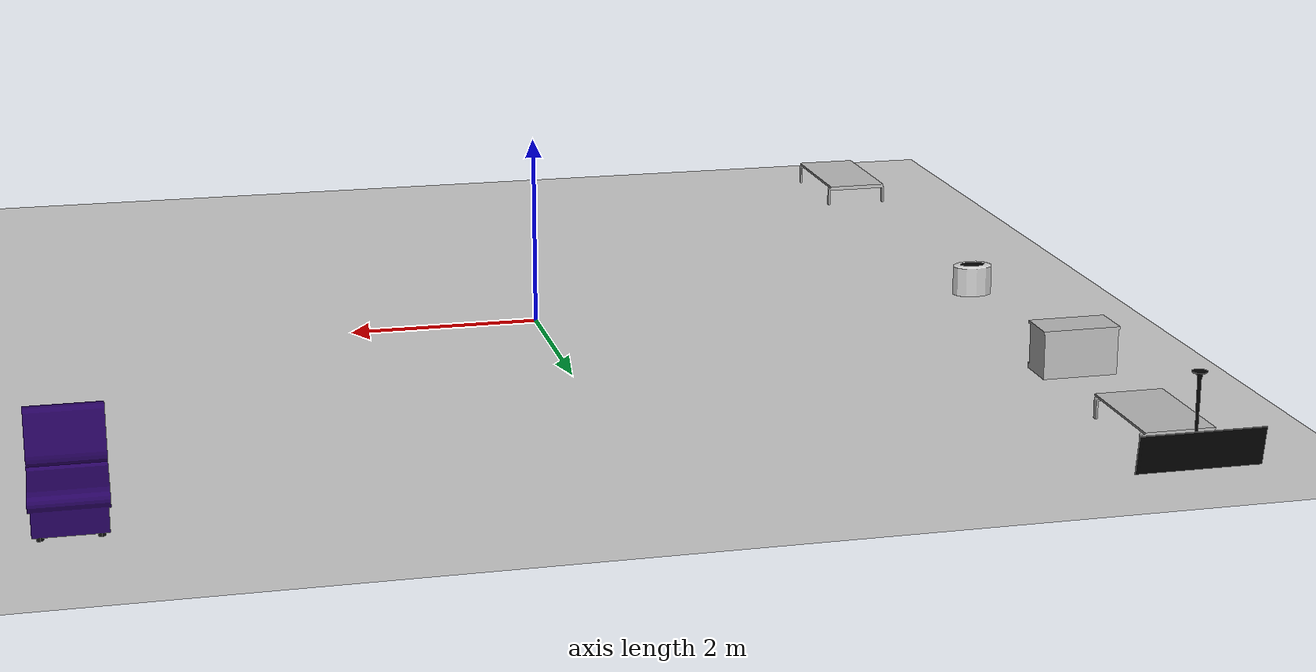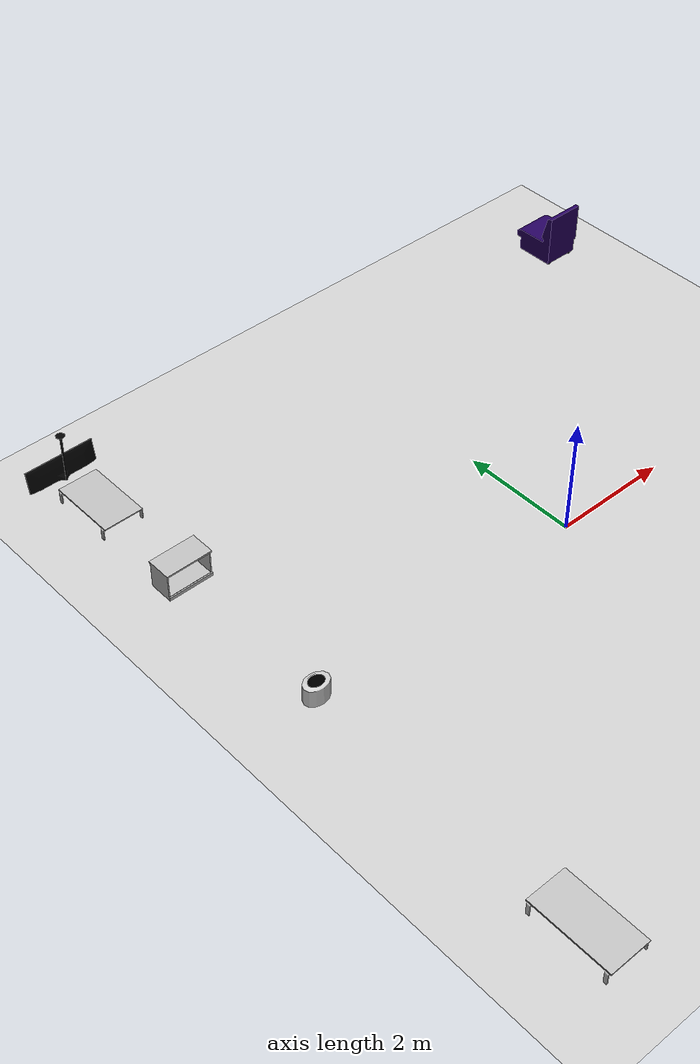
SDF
<?xml version="1.0" ?>
<sdf version="1.4">

  <world name="default">
    <include>
      <uri>model://ground_plane</uri>
    </include>

    <include>
      <uri>model://sun</uri>
    </include>

    <include>
      <uri>model://robert_gazebo/models/table_rectangular_high</uri>
      <name>table_rectangular_high</name>
      <pose>-5 -5 0 0 0 0</pose>
    </include>

    <include>
      <uri>model://robert_gazebo/models/table_rectangular_low</uri>
      <name>table_rectangular_low</name>
      <pose>-5 5 0 0 0 0</pose>
    </include>

    <include>
      <uri>model://robert_gazebo/models/locker_008</uri>
      <name>locker_008</name>
      <pose>-5 3 0 0 0 0</pose>
    </include>

    <include>
      <uri>model://robert_gazebo/models/dump</uri>
      <name>dump</name>
      <pose>-5 0 0 0 0 0</pose>
    </include>

    <include>
      <uri>model://robert_gazebo/models/screen</uri>
      <name>screen</name>
      <pose>-5 6 0 0 0 0</pose>
    </include>

    <include>
      <uri>model://robert_gazebo/models/soft_armchair</uri>
      <name>soft_armchair</name>
      <pose>5 5 0 0 0 0</pose>
    </include>

    <gui fullscreen='0'>
      <camera name='user_camera'>
        <pose>4.927360 -4.376610 3.740080 0.000000 0.275643 2.356190</pose>
        <view_controller>orbit</view_controller>
      </camera>
    </gui>

  </world>
</sdf>

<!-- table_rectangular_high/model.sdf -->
<sdf version='1.5'>
  <model name="table_rectangular_high">
    <pose>0 0 0 0 0 0</pose>
    <static>false</static>
    <link name='model_body'>
      <visual name="visual">
        <geometry>
          <mesh>
            <uri>model://robert_gazebo/meshes/table_rectangular_high_visual.dae</uri>
            <scale>1 1 1</scale>
          </mesh>
         </geometry>
      </visual>

      <collision name="collision">
        <geometry>
          <mesh>
            <uri>model://robert_gazebo/meshes/table_rectangular_high_collision.dae</uri>
            <scale>1 1 1</scale>
          </mesh>
        </geometry>
      </collision>

      <inertial>
        <pose> 0 0 0 0 0 0</pose>
        <inertia>
          <ixx>2.42</ixx>
          <ixy>0</ixy>
          <ixz>0</ixz>
          <iyy>0.87</iyy>
          <iyz>0</iyz>
          <izz>2.27</izz>
        </inertia>
        <mass>12.0</mass>
      </inertial>
    </link>
  </model>
</sdf>

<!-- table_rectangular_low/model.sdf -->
<sdf version='1.5'>
  <model name="table_rectangular_low">
    <pose>0 0 0 0 0 0</pose>
    <static>false</static>
    <link name='model_body'>
      <visual name="visual">
        <geometry>
          <mesh>
            <uri>model://robert_gazebo/meshes/table_rectangular_low_visual.dae</uri>
            <scale>1 1 1</scale>
          </mesh>
         </geometry>
      </visual>

      <collision name="collision">
        <geometry>
          <mesh>
            <uri>model://robert_gazebo/meshes/table_rectangular_low_collision.dae</uri>
            <scale>1 1 1</scale>
          </mesh>
        </geometry>
      </collision>

      <inertial>
        <pose> 0 0 0 0 0 0</pose>
        <inertia>
          <ixx>1.45</ixx>
          <ixy>0</ixy>
          <ixz>0</ixz>
          <iyy>0.55</iyy>
          <iyz>0</iyz>
          <izz>1.5</izz>
        </inertia>
        <mass>10.0</mass>
      </inertial>
    </link>
  </model>
</sdf>

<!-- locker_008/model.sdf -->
<sdf version='1.5'>
  <model name="locker_008">
    <pose>0 0 0 0 0 0</pose>
    <static>false</static>
    <link name='model_body'>
      <visual name="visual">
        <geometry>
          <mesh>
            <uri>model://robert_gazebo/meshes/locker_008_visual.dae</uri>
            <scale>1 1 1</scale>
          </mesh>
         </geometry>
      </visual>

      <collision name="collision">
        <geometry>
          <mesh>
            <uri>model://robert_gazebo/meshes/locker_008_collision.dae</uri>
            <scale>1 1 1</scale>
          </mesh>
        </geometry>
      </collision>

      <inertial>
        <pose> 0 0 0 0 0 0</pose>
        <inertia>
          <ixx>0.69</ixx>
          <ixy>0</ixy>
          <ixz>0</ixz>
          <iyy>1.19</iyy>
          <iyz>0</iyz>
          <izz>0.78</izz>
        </inertia>
        <mass>10.0</mass>
      </inertial>
    </link>
  </model>
</sdf>

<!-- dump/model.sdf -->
<sdf version='1.5'>
    <model name="dump">
        <pose>0 0 0 0 0 0</pose>
        <static>false</static>
        <link name='model_body'>
            <visual name="visual">
                <geometry>
                    <mesh>
                        <uri>model://robert_gazebo/meshes/dump_visual.dae</uri>
                        <scale>1 1 1</scale>
                    </mesh>
                </geometry>
            </visual>

            <collision name="collision">
                <geometry>
                    <mesh>
                        <uri>model://robert_gazebo/meshes/dump_collision.dae</uri>
                        <scale>1 1 1</scale>
                    </mesh>
                </geometry>
            </collision>

            <inertial>
                <pose> 0 0 0 0 0 0</pose>
                <inertia>
                    <ixx>0.12</ixx>
                    <ixy>0</ixy>
                    <ixz>0</ixz>
                    <iyy>0.14</iyy>
                    <iyz>0</iyz>
                    <izz>0.06</izz>
                </inertia>
                <mass>3.0</mass>
            </inertial>
        </link>
    </model>
</sdf>

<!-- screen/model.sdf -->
<sdf version='1.5'>
    <model name="LG_screen">
        <pose>0 0 0 0 0 0</pose>
        <static>true</static>
        <link name='model_body'>
            <visual name="visual">
                <geometry>
                    <mesh>
                        <uri>model://robert_gazebo/meshes/screen_visual.dae</uri>
                        <scale>1 1 1</scale>
                    </mesh>
                </geometry>
            </visual>

            <collision name="collision">
                <geometry>
                    <mesh>
                        <uri>model://robert_gazebo/meshes/screen_collision.dae</uri>
                        <scale>1 1 1</scale>
                    </mesh>
                </geometry>
            </collision>

            <inertial>
                <pose> 0 0 0 0 0 0</pose>
                <inertia>
                    <ixx>0.35</ixx>
                    <ixy>0</ixy>
                    <ixz>0</ixz>
                    <iyy>1.3</iyy>
                    <iyz>0</iyz>
                    <izz>0.98</izz>
                </inertia>
                <mass>8.0</mass>
            </inertial>
        </link>
    </model>
</sdf>

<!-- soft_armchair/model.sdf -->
<sdf version='1.5'>
  <model name="soft_chair">
    <pose>0 0 0 0 0 0</pose>
    <static>false</static>
    <link name='model_body'>
      <visual name="visual">
        <geometry>
          <mesh>
            <uri>model://robert_gazebo/meshes/soft_chair_visual.dae</uri>
            <scale>1 1 1</scale>
          </mesh>
         </geometry>
      </visual>

      <collision name="collision">
        <geometry>
          <mesh>
            <uri>model://robert_gazebo/meshes/soft_chair_collision.dae</uri>
            <scale>1 1 1</scale>
          </mesh>
        </geometry>
      </collision>

      <inertial>
        <pose> 0 0 0 0 0 0</pose>
        <inertia>
          <ixx>1.225</ixx>
          <ixy>0</ixy>
          <ixz>0</ixz>
          <iyy>1.1</iyy>
          <iyz>0</iyz>
          <izz>0.8625</izz>
        </inertia>
        <mass>15.0</mass>
      </inertial>
    </link>
  </model>
</sdf>
